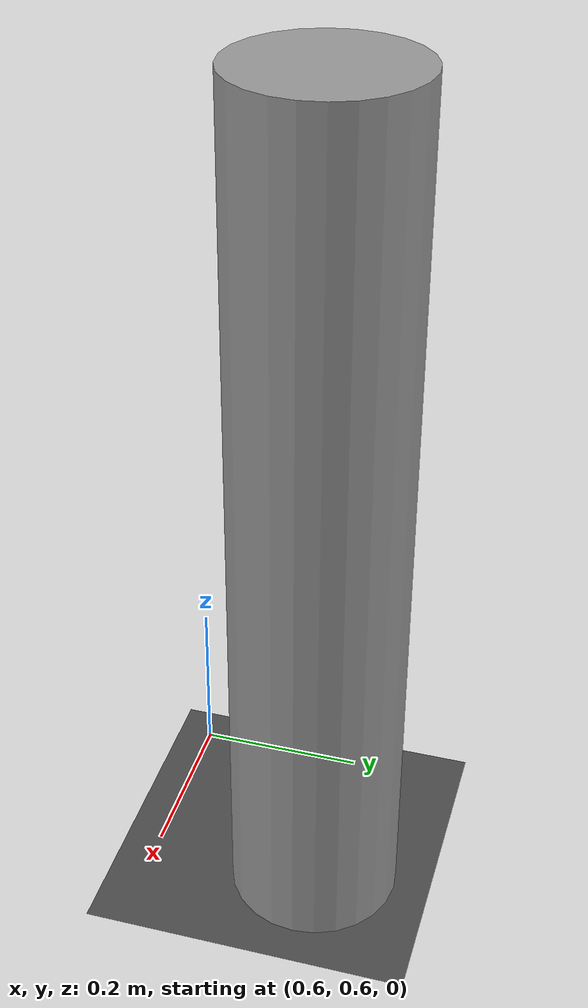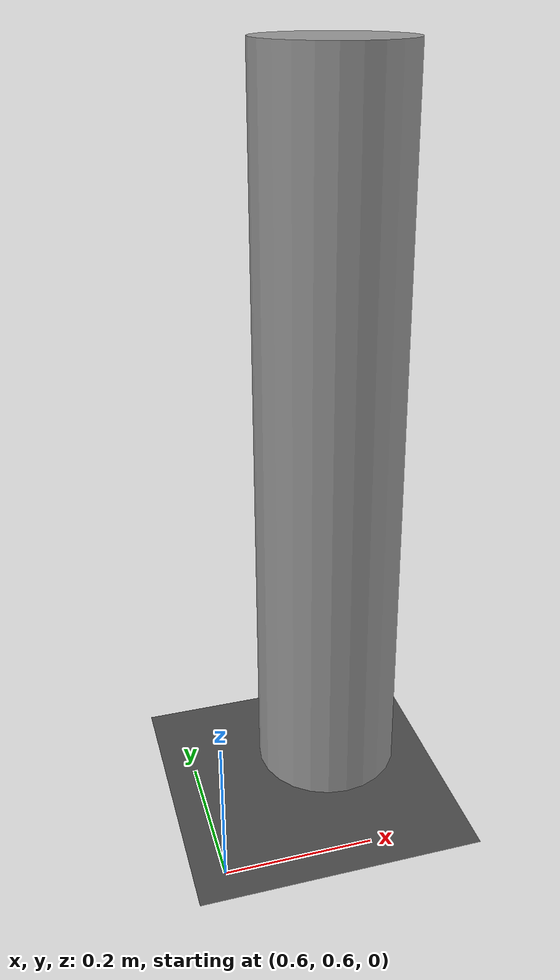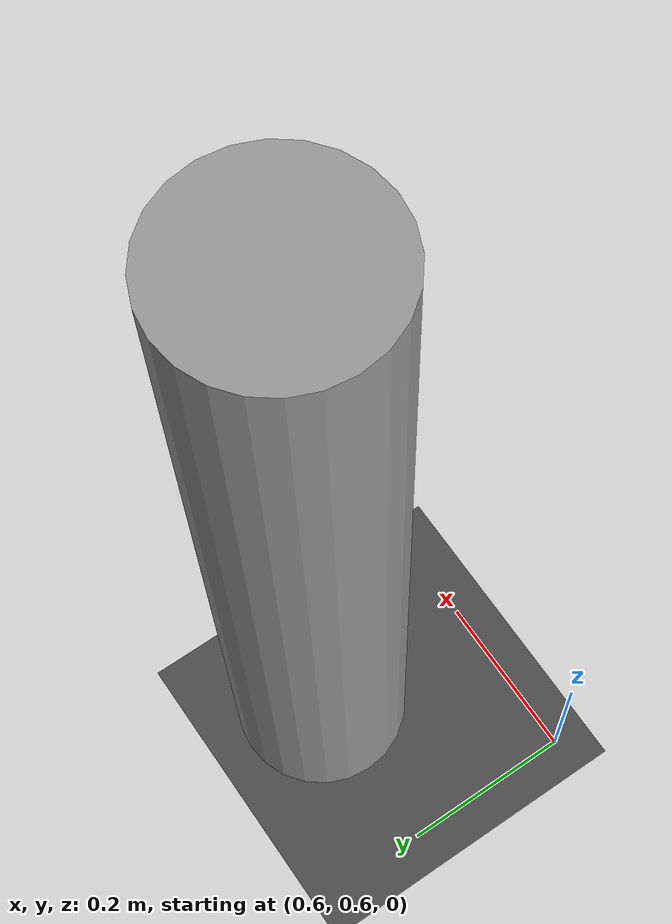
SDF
<?xml version="1.0" ?>
<sdf version="1.8">
    <world name="mini_proving_ground">
        <physics name="1ms" type="ignored">
            <max_step_size>0.001</max_step_size>
            <real_time_factor>1.0</real_time_factor>
        </physics>
        <plugin filename="gz-sim-physics-system" name="gz::sim::systems::Physics"/>
        <plugin filename="gz-sim-sensors-system" name="gz::sim::systems::Sensors">
            <render_engine>ogre2</render_engine>
        </plugin>
        <plugin filename="gz-sim-user-commands-system" name="gz::sim::systems::UserCommands"/>
        <plugin filename="gz-sim-scene-broadcaster-system" name="gz::sim::systems::SceneBroadcaster"/>

        <light type="directional" name="sun">
            <cast_shadows>true</cast_shadows>
            <pose>0 0 10 0 0 0</pose>
            <diffuse>0.8 0.8 0.8 1</diffuse>
            <specular>0.2 0.2 0.2 1</specular>
            <direction>-0.5 0.1 -0.9</direction>
        </light>

        <!-- THE TACTICAL BARRIER -->
        <model name="pillar">
            <static>true</static>
            <pose>0.8 0.8 0.5 0 0 0</pose>
            <link name="l">
                <collision name="c"><geometry><cylinder><radius>0.1</radius><length>1.0</length></cylinder></geometry></collision>
                <visual name="v"><geometry><cylinder><radius>0.1</radius><length>1.0</length></cylinder></geometry><material><ambient>0.6 0.6 0.6 1</ambient><diffuse>0.6 0.6 0.6 1</diffuse></material></visual>
            </link>
        </model>

        <model name="ground_plane">
            <static>true</static>
            <link name="link">
                <collision name="collision"><geometry><plane><normal>0 0 1</normal><size>10 10</size></plane></geometry></collision>
                <visual name="visual"><geometry><plane><normal>0 0 1</normal><size>10 10</size></plane></geometry><material><ambient>0.3 0.3 0.3 1</ambient><diffuse>0.3 0.3 0.3 1</diffuse></material></visual>
            </link>
        </model>
    </world>
</sdf>
